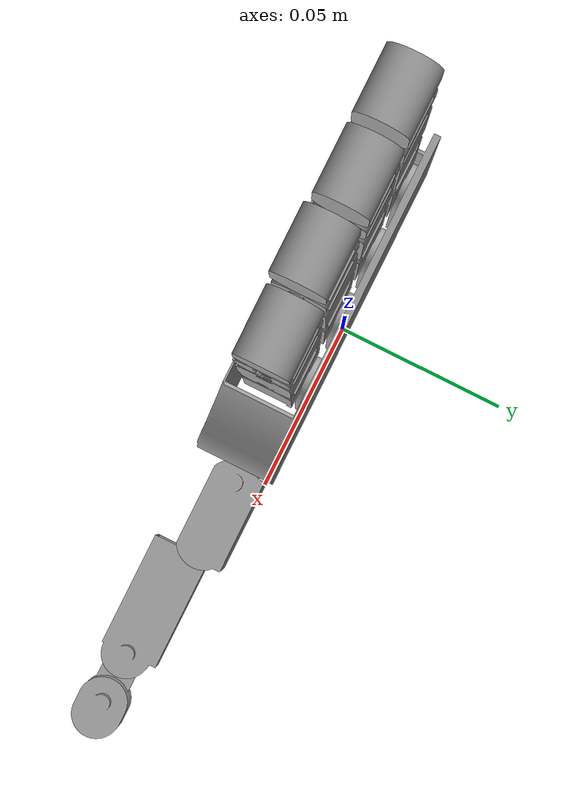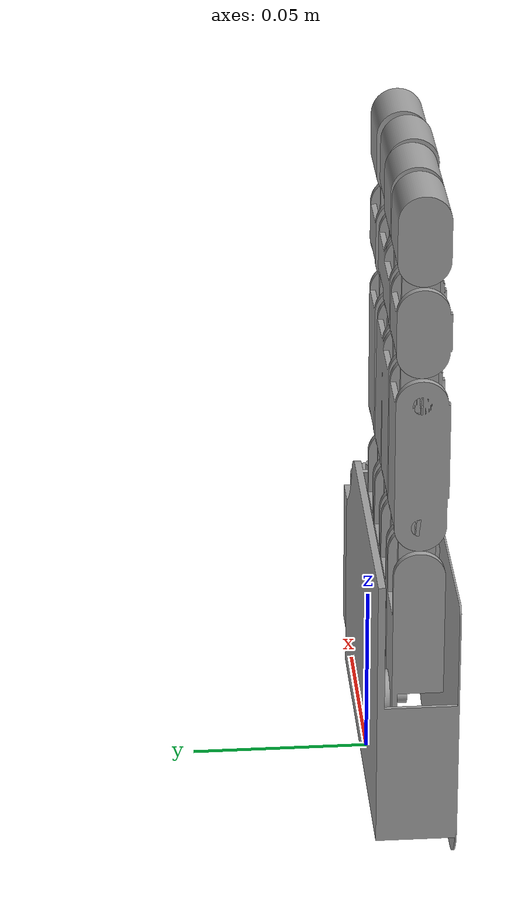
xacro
<?xml version="1.0" ?>
<robot name="hand_" xmlns:xacro="http://www.ros.org/wiki/xacro">

<xacro:include filename="$(find hand__description)/urdf/materials.xacro" />
<xacro:include filename="$(find hand__description)/urdf/hand_.trans" />
<xacro:include filename="$(find hand__description)/urdf/hand_.gazebo" />
<link name="base_link">
  <inertial>
    <origin xyz="-0.0031328273327830454 -0.0038074039304968844 0.037148638420330775" rpy="0 0 0"/>
    <mass value="0.1608603273719889"/>
    <inertia ixx="9.7e-05" iyy="0.000223" izz="0.00015" ixy="-1e-06" iyz="-4e-06" ixz="-2e-06"/>
  </inertial>
  <visual>
    <origin xyz="0 0 0" rpy="0 0 0"/>
    <geometry>
      <mesh filename="package://hand__description/meshes/base_link.stl" scale="0.001 0.001 0.001"/>
    </geometry>
    <material name="steel_satin"/>
  </visual>
  <collision>
    <origin xyz="0 0 0" rpy="0 0 0"/>
    <geometry>
      <mesh filename="package://hand__description/meshes/base_link.stl" scale="0.001 0.001 0.001"/>
    </geometry>
  </collision>
</link>

<link name="cmc_link_v4_1">
  <inertial>
    <origin xyz="-0.00048645427795625945 -0.004769447524329848 -6.493517695722872e-06" rpy="0 0 0"/>
    <mass value="0.018416700517789007"/>
    <inertia ixx="5e-06" iyy="5e-06" izz="0.0" ixy="-0.0" iyz="-0.0" ixz="0.0"/>
  </inertial>
  <visual>
    <origin xyz="-0.039 0.0 -0.0225" rpy="0 0 0"/>
    <geometry>
      <mesh filename="package://hand__description/meshes/cmc_link_v4_1.stl" scale="0.001 0.001 0.001"/>
    </geometry>
    <material name="steel_satin"/>
  </visual>
  <collision>
    <origin xyz="-0.039 0.0 -0.0225" rpy="0 0 0"/>
    <geometry>
      <mesh filename="package://hand__description/meshes/cmc_link_v4_1.stl" scale="0.001 0.001 0.001"/>
    </geometry>
  </collision>
</link>

<link name="t_connector_1_v1_1">
  <inertial>
    <origin xyz="0.007499999970143861 -1.312864400526692e-11 -0.0012499999999999768" rpy="0 0 0"/>
    <mass value="0.00374307805216622"/>
    <inertia ixx="0.0" iyy="0.0" izz="0.0" ixy="-0.0" iyz="-0.0" ixz="-0.0"/>
  </inertial>
  <visual>
    <origin xyz="-0.03825 0.007 -0.0225" rpy="0 0 0"/>
    <geometry>
      <mesh filename="package://hand__description/meshes/t_connector_1_v1_1.stl" scale="0.001 0.001 0.001"/>
    </geometry>
    <material name="steel_satin"/>
  </visual>
  <collision>
    <origin xyz="-0.03825 0.007 -0.0225" rpy="0 0 0"/>
    <geometry>
      <mesh filename="package://hand__description/meshes/t_connector_1_v1_1.stl" scale="0.001 0.001 0.001"/>
    </geometry>
  </collision>
</link>

<link name="t_mcp_v5_1">
  <inertial>
    <origin xyz="0.007807400362975329 0.002936289856962501 -0.00016613310844226098" rpy="0 0 0"/>
    <mass value="0.03943050014537037"/>
    <inertia ixx="1.1e-05" iyy="1.3e-05" izz="3e-06" ixy="-0.0" iyz="-0.0" ixz="0.0"/>
  </inertial>
  <visual>
    <origin xyz="-0.05325 0.007 -0.0225" rpy="0 0 0"/>
    <geometry>
      <mesh filename="package://hand__description/meshes/t_mcp_v5_1.stl" scale="0.001 0.001 0.001"/>
    </geometry>
    <material name="steel_satin"/>
  </visual>
  <collision>
    <origin xyz="-0.05325 0.007 -0.0225" rpy="0 0 0"/>
    <geometry>
      <mesh filename="package://hand__description/meshes/t_mcp_v5_1.stl" scale="0.001 0.001 0.001"/>
    </geometry>
  </collision>
</link>

<link name="t_pip_link_v5_1">
  <inertial>
    <origin xyz="0.02133528843428059 -0.0068141396469656645 4.4729187367864576e-11" rpy="0 0 0"/>
    <mass value="0.03411217481775113"/>
    <inertia ixx="2e-06" iyy="7e-06" izz="6e-06" ixy="1e-06" iyz="0.0" ixz="0.0"/>
  </inertial>
  <visual>
    <origin xyz="-0.072947 0.004197 -0.014" rpy="0 0 0"/>
    <geometry>
      <mesh filename="package://hand__description/meshes/t_pip_link_v5_1.stl" scale="0.001 0.001 0.001"/>
    </geometry>
    <material name="steel_satin"/>
  </visual>
  <collision>
    <origin xyz="-0.072947 0.004197 -0.014" rpy="0 0 0"/>
    <geometry>
      <mesh filename="package://hand__description/meshes/t_pip_link_v5_1.stl" scale="0.001 0.001 0.001"/>
    </geometry>
  </collision>
</link>

<link name="t_connector_2_v1_1">
  <inertial>
    <origin xyz="0.00749969926025644 3.0084577047270744e-07 -0.0002499999999999603" rpy="0 0 0"/>
    <mass value="0.00374307805216622"/>
    <inertia ixx="0.0" iyy="0.0" izz="0.0" ixy="0.0" iyz="-0.0" ixz="-0.0"/>
  </inertial>
  <visual>
    <origin xyz="-0.108947 0.013197 -0.014" rpy="0 0 0"/>
    <geometry>
      <mesh filename="package://hand__description/meshes/t_connector_2_v1_1.stl" scale="0.001 0.001 0.001"/>
    </geometry>
    <material name="steel_satin"/>
  </visual>
  <collision>
    <origin xyz="-0.108947 0.013197 -0.014" rpy="0 0 0"/>
    <geometry>
      <mesh filename="package://hand__description/meshes/t_connector_2_v1_1.stl" scale="0.001 0.001 0.001"/>
    </geometry>
  </collision>
</link>

<link name="t_tip_v2_1">
  <inertial>
    <origin xyz="0.001655463445188382 3.0084577048138106e-07 0.001500000000000036" rpy="0 0 0"/>
    <mass value="0.028623425337123778"/>
    <inertia ixx="1e-06" iyy="1e-06" izz="1e-06" ixy="0.0" iyz="0.0" ixz="-0.0"/>
  </inertial>
  <visual>
    <origin xyz="-0.123947 0.013197 -0.0125" rpy="0 0 0"/>
    <geometry>
      <mesh filename="package://hand__description/meshes/t_tip_v2_1.stl" scale="0.001 0.001 0.001"/>
    </geometry>
    <material name="steel_satin"/>
  </visual>
  <collision>
    <origin xyz="-0.123947 0.013197 -0.0125" rpy="0 0 0"/>
    <geometry>
      <mesh filename="package://hand__description/meshes/t_tip_v2_1.stl" scale="0.001 0.001 0.001"/>
    </geometry>
  </collision>
</link>

<link name="i_mcp_yaw_link_v1_1">
  <inertial>
    <origin xyz="-3.172462292866385e-14 -0.0012359787607253364 0.0005366094686043744" rpy="0 0 0"/>
    <mass value="0.011430485562037091"/>
    <inertia ixx="2e-06" iyy="3e-06" izz="0.0" ixy="-0.0" iyz="0.0" ixz="0.0"/>
  </inertial>
  <visual>
    <origin xyz="-0.0195 0.0 -0.0225" rpy="0 0 0"/>
    <geometry>
      <mesh filename="package://hand__description/meshes/i_mcp_yaw_link_v1_1.stl" scale="0.001 0.001 0.001"/>
    </geometry>
    <material name="steel_satin"/>
  </visual>
  <collision>
    <origin xyz="-0.0195 0.0 -0.0225" rpy="0 0 0"/>
    <geometry>
      <mesh filename="package://hand__description/meshes/i_mcp_yaw_link_v1_1.stl" scale="0.001 0.001 0.001"/>
    </geometry>
  </collision>
</link>

<link name="i_mcp_pitch_link_v1_1">
  <inertial>
    <origin xyz="-4.586608870482678e-15 -0.005952105069446156 0.02420829596799528" rpy="0 0 0"/>
    <mass value="0.026330610364773934"/>
    <inertia ixx="5e-06" iyy="6e-06" izz="2e-06" ixy="0.0" iyz="0.0" ixz="-0.0"/>
  </inertial>
  <visual>
    <origin xyz="-0.0195 0.002 -0.0405" rpy="0 0 0"/>
    <geometry>
      <mesh filename="package://hand__description/meshes/i_mcp_pitch_link_v1_1.stl" scale="0.001 0.001 0.001"/>
    </geometry>
    <material name="steel_satin"/>
  </visual>
  <collision>
    <origin xyz="-0.0195 0.002 -0.0405" rpy="0 0 0"/>
    <geometry>
      <mesh filename="package://hand__description/meshes/i_mcp_pitch_link_v1_1.stl" scale="0.001 0.001 0.001"/>
    </geometry>
  </collision>
</link>

<link name="i_connector_1_v1_1">
  <inertial>
    <origin xyz="0.0002500000000000002 -3.469446951953614e-17 0.007499999970251525" rpy="0 0 0"/>
    <mass value="0.00374307805216622"/>
    <inertia ixx="0.0" iyy="0.0" izz="0.0" ixy="0.0" iyz="0.0" ixz="0.0"/>
  </inertial>
  <visual>
    <origin xyz="-0.0195 0.00925 -0.0815" rpy="0 0 0"/>
    <geometry>
      <mesh filename="package://hand__description/meshes/i_connector_1_v1_1.stl" scale="0.001 0.001 0.001"/>
    </geometry>
    <material name="steel_satin"/>
  </visual>
  <collision>
    <origin xyz="-0.0195 0.00925 -0.0815" rpy="0 0 0"/>
    <geometry>
      <mesh filename="package://hand__description/meshes/i_connector_1_v1_1.stl" scale="0.001 0.001 0.001"/>
    </geometry>
  </collision>
</link>

<link name="i_pip_pitch_link_v4_1">
  <inertial>
    <origin xyz="0.0010000000000000044 -4.163336342344337e-17 0.0179999999696749" rpy="0 0 0"/>
    <mass value="0.005240569245269249"/>
    <inertia ixx="2e-06" iyy="2e-06" izz="0.0" ixy="-0.0" iyz="0.0" ixz="-0.0"/>
  </inertial>
  <visual>
    <origin xyz="-0.0185 0.00925 -0.0965" rpy="0 0 0"/>
    <geometry>
      <mesh filename="package://hand__description/meshes/i_pip_pitch_link_v4_1.stl" scale="0.001 0.001 0.001"/>
    </geometry>
    <material name="steel_satin"/>
  </visual>
  <collision>
    <origin xyz="-0.0185 0.00925 -0.0965" rpy="0 0 0"/>
    <geometry>
      <mesh filename="package://hand__description/meshes/i_pip_pitch_link_v4_1.stl" scale="0.001 0.001 0.001"/>
    </geometry>
  </collision>
</link>

<link name="i_connector_2_v1_1">
  <inertial>
    <origin xyz="0.0002500000000000002 -5.0306980803327406e-17 0.007499999970251553" rpy="0 0 0"/>
    <mass value="0.00374307805216622"/>
    <inertia ixx="0.0" iyy="0.0" izz="0.0" ixy="-0.0" iyz="0.0" ixz="0.0"/>
  </inertial>
  <visual>
    <origin xyz="-0.0195 0.00925 -0.1325" rpy="0 0 0"/>
    <geometry>
      <mesh filename="package://hand__description/meshes/i_connector_2_v1_1.stl" scale="0.001 0.001 0.001"/>
    </geometry>
    <material name="steel_satin"/>
  </visual>
  <collision>
    <origin xyz="-0.0195 0.00925 -0.1325" rpy="0 0 0"/>
    <geometry>
      <mesh filename="package://hand__description/meshes/i_connector_2_v1_1.stl" scale="0.001 0.001 0.001"/>
    </geometry>
  </collision>
</link>

<link name="i_dip_link_v2_1">
  <inertial>
    <origin xyz="0.0010000000000000078 -7.112366251504909e-17 0.005499999970720593" rpy="0 0 0"/>
    <mass value="0.005240569245269249"/>
    <inertia ixx="0.0" iyy="0.0" izz="0.0" ixy="0.0" iyz="-0.0" ixz="0.0"/>
  </inertial>
  <visual>
    <origin xyz="-0.0185 0.00925 -0.1475" rpy="0 0 0"/>
    <geometry>
      <mesh filename="package://hand__description/meshes/i_dip_link_v2_1.stl" scale="0.001 0.001 0.001"/>
    </geometry>
    <material name="steel_satin"/>
  </visual>
  <collision>
    <origin xyz="-0.0185 0.00925 -0.1475" rpy="0 0 0"/>
    <geometry>
      <mesh filename="package://hand__description/meshes/i_dip_link_v2_1.stl" scale="0.001 0.001 0.001"/>
    </geometry>
  </collision>
</link>

<link name="i_connector_3_v1_1">
  <inertial>
    <origin xyz="0.00025000000000001063 -7.632783294297951e-17 0.007499999970251553" rpy="0 0 0"/>
    <mass value="0.00374307805216622"/>
    <inertia ixx="0.0" iyy="0.0" izz="0.0" ixy="-0.0" iyz="0.0" ixz="0.0"/>
  </inertial>
  <visual>
    <origin xyz="-0.0195 0.00925 -0.1585" rpy="0 0 0"/>
    <geometry>
      <mesh filename="package://hand__description/meshes/i_connector_3_v1_1.stl" scale="0.001 0.001 0.001"/>
    </geometry>
    <material name="steel_satin"/>
  </visual>
  <collision>
    <origin xyz="-0.0195 0.00925 -0.1585" rpy="0 0 0"/>
    <geometry>
      <mesh filename="package://hand__description/meshes/i_connector_3_v1_1.stl" scale="0.001 0.001 0.001"/>
    </geometry>
  </collision>
</link>

<link name="i_tip_link_v2_1">
  <inertial>
    <origin xyz="-0.001499990773028318 -2.6801042457141877e-06 0.005499950625065281" rpy="0 0 0"/>
    <mass value="0.04109471063806864"/>
    <inertia ixx="2e-06" iyy="3e-06" izz="2e-06" ixy="0.0" iyz="-0.0" ixz="0.0"/>
  </inertial>
  <visual>
    <origin xyz="-0.021 0.00925 -0.1735" rpy="0 0 0"/>
    <geometry>
      <mesh filename="package://hand__description/meshes/i_tip_link_v2_1.stl" scale="0.001 0.001 0.001"/>
    </geometry>
    <material name="steel_satin"/>
  </visual>
  <collision>
    <origin xyz="-0.021 0.00925 -0.1735" rpy="0 0 0"/>
    <geometry>
      <mesh filename="package://hand__description/meshes/i_tip_link_v2_1.stl" scale="0.001 0.001 0.001"/>
    </geometry>
  </collision>
</link>

<link name="m_mcp_yaw_link_v1_1">
  <inertial>
    <origin xyz="1.7623359342441685e-14 -0.0012359787607253386 0.0005366094686043675" rpy="0 0 0"/>
    <mass value="0.011430485562037091"/>
    <inertia ixx="2e-06" iyy="3e-06" izz="0.0" ixy="0.0" iyz="0.0" ixz="-0.0"/>
  </inertial>
  <visual>
    <origin xyz="-0.0 0.0 -0.0225" rpy="0 0 0"/>
    <geometry>
      <mesh filename="package://hand__description/meshes/m_mcp_yaw_link_v1_1.stl" scale="0.001 0.001 0.001"/>
    </geometry>
    <material name="steel_satin"/>
  </visual>
  <collision>
    <origin xyz="-0.0 0.0 -0.0225" rpy="0 0 0"/>
    <geometry>
      <mesh filename="package://hand__description/meshes/m_mcp_yaw_link_v1_1.stl" scale="0.001 0.001 0.001"/>
    </geometry>
  </collision>
</link>

<link name="m_mcp_pitch_link_v1_1">
  <inertial>
    <origin xyz="-4.5964789723509935e-15 -0.005952105069446156 0.024208295967995265" rpy="0 0 0"/>
    <mass value="0.026330610364773934"/>
    <inertia ixx="5e-06" iyy="6e-06" izz="2e-06" ixy="0.0" iyz="0.0" ixz="-0.0"/>
  </inertial>
  <visual>
    <origin xyz="0.0 0.002 -0.0405" rpy="0 0 0"/>
    <geometry>
      <mesh filename="package://hand__description/meshes/m_mcp_pitch_link_v1_1.stl" scale="0.001 0.001 0.001"/>
    </geometry>
    <material name="steel_satin"/>
  </visual>
  <collision>
    <origin xyz="0.0 0.002 -0.0405" rpy="0 0 0"/>
    <geometry>
      <mesh filename="package://hand__description/meshes/m_mcp_pitch_link_v1_1.stl" scale="0.001 0.001 0.001"/>
    </geometry>
  </collision>
</link>

<link name="m_connector_1_v1_1">
  <inertial>
    <origin xyz="0.00024999999999998857 -1.0581813203458523e-16 0.007499999970251525" rpy="0 0 0"/>
    <mass value="0.00374307805216622"/>
    <inertia ixx="0.0" iyy="0.0" izz="0.0" ixy="-0.0" iyz="0.0" ixz="-0.0"/>
  </inertial>
  <visual>
    <origin xyz="0.0 0.00925 -0.0815" rpy="0 0 0"/>
    <geometry>
      <mesh filename="package://hand__description/meshes/m_connector_1_v1_1.stl" scale="0.001 0.001 0.001"/>
    </geometry>
    <material name="steel_satin"/>
  </visual>
  <collision>
    <origin xyz="0.0 0.00925 -0.0815" rpy="0 0 0"/>
    <geometry>
      <mesh filename="package://hand__description/meshes/m_connector_1_v1_1.stl" scale="0.001 0.001 0.001"/>
    </geometry>
  </collision>
</link>

<link name="m_pip_pitch_link_v2_1">
  <inertial>
    <origin xyz="-0.010824012750029453 0.0007615456375304318 0.018123960084147656" rpy="0 0 0"/>
    <mass value="0.11604898173137333"/>
    <inertia ixx="2.2e-05" iyy="7.8e-05" izz="6.1e-05" ixy="0.0" iyz="0.0" ixz="0.0"/>
  </inertial>
  <visual>
    <origin xyz="-0.0015 0.00925 -0.0965" rpy="0 0 0"/>
    <geometry>
      <mesh filename="package://hand__description/meshes/m_pip_pitch_link_v2_1.stl" scale="0.001 0.001 0.001"/>
    </geometry>
    <material name="steel_satin"/>
  </visual>
  <collision>
    <origin xyz="-0.0015 0.00925 -0.0965" rpy="0 0 0"/>
    <geometry>
      <mesh filename="package://hand__description/meshes/m_pip_pitch_link_v2_1.stl" scale="0.001 0.001 0.001"/>
    </geometry>
  </collision>
</link>

<link name="m_connector_2_v1_1">
  <inertial>
    <origin xyz="0.00025000000000000857 -6.560429417987179e-05 0.007499343623543014" rpy="0 0 0"/>
    <mass value="0.00374307805216622"/>
    <inertia ixx="0.0" iyy="0.0" izz="0.0" ixy="-0.0" iyz="0.0" ixz="0.0"/>
  </inertial>
  <visual>
    <origin xyz="-0.0 0.009564 -0.132499" rpy="0 0 0"/>
    <geometry>
      <mesh filename="package://hand__description/meshes/m_connector_2_v1_1.stl" scale="0.001 0.001 0.001"/>
    </geometry>
    <material name="steel_satin"/>
  </visual>
  <collision>
    <origin xyz="-0.0 0.009564 -0.132499" rpy="0 0 0"/>
    <geometry>
      <mesh filename="package://hand__description/meshes/m_connector_2_v1_1.stl" scale="0.001 0.001 0.001"/>
    </geometry>
  </collision>
</link>

<link name="m_dip_link_v2_1">
  <inertial>
    <origin xyz="-0.0014999999999999911 -4.804925566282911e-05 0.005499848623846337" rpy="0 0 0"/>
    <mass value="0.005240569245269249"/>
    <inertia ixx="0.0" iyy="0.0" izz="0.0" ixy="0.0" iyz="0.0" ixz="-0.0"/>
  </inertial>
  <visual>
    <origin xyz="-0.0015 0.009695 -0.147498" rpy="0 0 0"/>
    <geometry>
      <mesh filename="package://hand__description/meshes/m_dip_link_v2_1.stl" scale="0.001 0.001 0.001"/>
    </geometry>
    <material name="steel_satin"/>
  </visual>
  <collision>
    <origin xyz="-0.0015 0.009695 -0.147498" rpy="0 0 0"/>
    <geometry>
      <mesh filename="package://hand__description/meshes/m_dip_link_v2_1.stl" scale="0.001 0.001 0.001"/>
    </geometry>
  </collision>
</link>

<link name="m_connector_3_v1_1">
  <inertial>
    <origin xyz="0.0002499999999999933 -6.549421713753119e-05 0.00749935362321158" rpy="0 0 0"/>
    <mass value="0.00374307805216622"/>
    <inertia ixx="0.0" iyy="0.0" izz="0.0" ixy="0.0" iyz="0.0" ixz="-0.0"/>
  </inertial>
  <visual>
    <origin xyz="-0.0 0.009791 -0.158498" rpy="0 0 0"/>
    <geometry>
      <mesh filename="package://hand__description/meshes/m_connector_3_v1_1.stl" scale="0.001 0.001 0.001"/>
    </geometry>
    <material name="steel_satin"/>
  </visual>
  <collision>
    <origin xyz="-0.0 0.009791 -0.158498" rpy="0 0 0"/>
    <geometry>
      <mesh filename="package://hand__description/meshes/m_connector_3_v1_1.stl" scale="0.001 0.001 0.001"/>
    </geometry>
  </collision>
</link>

<link name="m_tip_link_v2_1">
  <inertial>
    <origin xyz="-0.001499990773028336 -5.0618750199347626e-05 0.005499785891713599" rpy="0 0 0"/>
    <mass value="0.04109471063806864"/>
    <inertia ixx="2e-06" iyy="3e-06" izz="2e-06" ixy="0.0" iyz="0.0" ixz="0.0"/>
  </inertial>
  <visual>
    <origin xyz="-0.0015 0.009922 -0.173497" rpy="0 0 0"/>
    <geometry>
      <mesh filename="package://hand__description/meshes/m_tip_link_v2_1.stl" scale="0.001 0.001 0.001"/>
    </geometry>
    <material name="steel_satin"/>
  </visual>
  <collision>
    <origin xyz="-0.0015 0.009922 -0.173497" rpy="0 0 0"/>
    <geometry>
      <mesh filename="package://hand__description/meshes/m_tip_link_v2_1.stl" scale="0.001 0.001 0.001"/>
    </geometry>
  </collision>
</link>

<link name="r_mcp_yaw_link_v1_1">
  <inertial>
    <origin xyz="-3.17280923756158e-14 -0.0012359787607253358 0.0005366094686043987" rpy="0 0 0"/>
    <mass value="0.011430485562037091"/>
    <inertia ixx="2e-06" iyy="3e-06" izz="0.0" ixy="-0.0" iyz="0.0" ixz="0.0"/>
  </inertial>
  <visual>
    <origin xyz="0.0195 0.0 -0.0225" rpy="0 0 0"/>
    <geometry>
      <mesh filename="package://hand__description/meshes/r_mcp_yaw_link_v1_1.stl" scale="0.001 0.001 0.001"/>
    </geometry>
    <material name="steel_satin"/>
  </visual>
  <collision>
    <origin xyz="0.0195 0.0 -0.0225" rpy="0 0 0"/>
    <geometry>
      <mesh filename="package://hand__description/meshes/r_mcp_yaw_link_v1_1.stl" scale="0.001 0.001 0.001"/>
    </geometry>
  </collision>
</link>

<link name="r_mcp_pitch_link_v1_1">
  <inertial>
    <origin xyz="-4.593547764386585e-15 -0.005952105069446156 0.024208295967995307" rpy="0 0 0"/>
    <mass value="0.026330610364773934"/>
    <inertia ixx="5e-06" iyy="6e-06" izz="2e-06" ixy="0.0" iyz="0.0" ixz="-0.0"/>
  </inertial>
  <visual>
    <origin xyz="0.0195 0.002 -0.0405" rpy="0 0 0"/>
    <geometry>
      <mesh filename="package://hand__description/meshes/r_mcp_pitch_link_v1_1.stl" scale="0.001 0.001 0.001"/>
    </geometry>
    <material name="steel_satin"/>
  </visual>
  <collision>
    <origin xyz="0.0195 0.002 -0.0405" rpy="0 0 0"/>
    <geometry>
      <mesh filename="package://hand__description/meshes/r_mcp_pitch_link_v1_1.stl" scale="0.001 0.001 0.001"/>
    </geometry>
  </collision>
</link>

<link name="r_connector_1_v1_1">
  <inertial>
    <origin xyz="0.00024999999999999675 -2.6020852139652106e-17 0.007499999970251553" rpy="0 0 0"/>
    <mass value="0.00374307805216622"/>
    <inertia ixx="0.0" iyy="0.0" izz="0.0" ixy="-0.0" iyz="0.0" ixz="-0.0"/>
  </inertial>
  <visual>
    <origin xyz="0.0195 0.00925 -0.0815" rpy="0 0 0"/>
    <geometry>
      <mesh filename="package://hand__description/meshes/r_connector_1_v1_1.stl" scale="0.001 0.001 0.001"/>
    </geometry>
    <material name="steel_satin"/>
  </visual>
  <collision>
    <origin xyz="0.0195 0.00925 -0.0815" rpy="0 0 0"/>
    <geometry>
      <mesh filename="package://hand__description/meshes/r_connector_1_v1_1.stl" scale="0.001 0.001 0.001"/>
    </geometry>
  </collision>
</link>

<link name="r_pip_pitch_link_v2_1">
  <inertial>
    <origin xyz="-0.001500000000000029 -3.469446951953614e-17 0.01799999997072063" rpy="0 0 0"/>
    <mass value="0.005240569245269249"/>
    <inertia ixx="2e-06" iyy="2e-06" izz="0.0" ixy="0.0" iyz="0.0" ixz="-0.0"/>
  </inertial>
  <visual>
    <origin xyz="0.018 0.00925 -0.0965" rpy="0 0 0"/>
    <geometry>
      <mesh filename="package://hand__description/meshes/r_pip_pitch_link_v2_1.stl" scale="0.001 0.001 0.001"/>
    </geometry>
    <material name="steel_satin"/>
  </visual>
  <collision>
    <origin xyz="0.018 0.00925 -0.0965" rpy="0 0 0"/>
    <geometry>
      <mesh filename="package://hand__description/meshes/r_pip_pitch_link_v2_1.stl" scale="0.001 0.001 0.001"/>
    </geometry>
  </collision>
</link>

<link name="r_connector_2_v1_1">
  <inertial>
    <origin xyz="0.0002499999999999343 -3.122502256758253e-17 0.0074999999702514974" rpy="0 0 0"/>
    <mass value="0.00374307805216622"/>
    <inertia ixx="0.0" iyy="0.0" izz="0.0" ixy="-0.0" iyz="0.0" ixz="0.0"/>
  </inertial>
  <visual>
    <origin xyz="0.0195 0.00925 -0.1325" rpy="0 0 0"/>
    <geometry>
      <mesh filename="package://hand__description/meshes/r_connector_2_v1_1.stl" scale="0.001 0.001 0.001"/>
    </geometry>
    <material name="steel_satin"/>
  </visual>
  <collision>
    <origin xyz="0.0195 0.00925 -0.1325" rpy="0 0 0"/>
    <geometry>
      <mesh filename="package://hand__description/meshes/r_connector_2_v1_1.stl" scale="0.001 0.001 0.001"/>
    </geometry>
  </collision>
</link>

<link name="r_dip_link_v2_1">
  <inertial>
    <origin xyz="0.0009999999999999176 -7.112366251504909e-17 0.005499999970720648" rpy="0 0 0"/>
    <mass value="0.005240569245269249"/>
    <inertia ixx="0.0" iyy="0.0" izz="0.0" ixy="0.0" iyz="0.0" ixz="0.0"/>
  </inertial>
  <visual>
    <origin xyz="0.0205 0.00925 -0.1475" rpy="0 0 0"/>
    <geometry>
      <mesh filename="package://hand__description/meshes/r_dip_link_v2_1.stl" scale="0.001 0.001 0.001"/>
    </geometry>
    <material name="steel_satin"/>
  </visual>
  <collision>
    <origin xyz="0.0205 0.00925 -0.1475" rpy="0 0 0"/>
    <geometry>
      <mesh filename="package://hand__description/meshes/r_dip_link_v2_1.stl" scale="0.001 0.001 0.001"/>
    </geometry>
  </collision>
</link>

<link name="r_connector_3_v1_1">
  <inertial>
    <origin xyz="0.00024999999999991 3.122502256758253e-17 0.0074999999702516085" rpy="0 0 0"/>
    <mass value="0.00374307805216622"/>
    <inertia ixx="0.0" iyy="0.0" izz="0.0" ixy="0.0" iyz="0.0" ixz="0.0"/>
  </inertial>
  <visual>
    <origin xyz="0.0195 0.00925 -0.1585" rpy="0 0 0"/>
    <geometry>
      <mesh filename="package://hand__description/meshes/r_connector_3_v1_1.stl" scale="0.001 0.001 0.001"/>
    </geometry>
    <material name="steel_satin"/>
  </visual>
  <collision>
    <origin xyz="0.0195 0.00925 -0.1585" rpy="0 0 0"/>
    <geometry>
      <mesh filename="package://hand__description/meshes/r_connector_3_v1_1.stl" scale="0.001 0.001 0.001"/>
    </geometry>
  </collision>
</link>

<link name="r_tip_link_v2_1">
  <inertial>
    <origin xyz="0.0010000092269715696 -2.68010424566735e-06 0.0054999506250653085" rpy="0 0 0"/>
    <mass value="0.04109471063806864"/>
    <inertia ixx="2e-06" iyy="3e-06" izz="2e-06" ixy="0.0" iyz="-0.0" ixz="0.0"/>
  </inertial>
  <visual>
    <origin xyz="0.0205 0.00925 -0.1735" rpy="0 0 0"/>
    <geometry>
      <mesh filename="package://hand__description/meshes/r_tip_link_v2_1.stl" scale="0.001 0.001 0.001"/>
    </geometry>
    <material name="steel_satin"/>
  </visual>
  <collision>
    <origin xyz="0.0205 0.00925 -0.1735" rpy="0 0 0"/>
    <geometry>
      <mesh filename="package://hand__description/meshes/r_tip_link_v2_1.stl" scale="0.001 0.001 0.001"/>
    </geometry>
  </collision>
</link>

<link name="s_mcp_yaw_link_v1_1">
  <inertial>
    <origin xyz="-3.1731561822567755e-14 -0.0012359787607253373 0.0005366094686043744" rpy="0 0 0"/>
    <mass value="0.011430485562037091"/>
    <inertia ixx="2e-06" iyy="3e-06" izz="0.0" ixy="-0.0" iyz="0.0" ixz="0.0"/>
  </inertial>
  <visual>
    <origin xyz="0.039 0.0 -0.0225" rpy="0 0 0"/>
    <geometry>
      <mesh filename="package://hand__description/meshes/s_mcp_yaw_link_v1_1.stl" scale="0.001 0.001 0.001"/>
    </geometry>
    <material name="steel_satin"/>
  </visual>
  <collision>
    <origin xyz="0.039 0.0 -0.0225" rpy="0 0 0"/>
    <geometry>
      <mesh filename="package://hand__description/meshes/s_mcp_yaw_link_v1_1.stl" scale="0.001 0.001 0.001"/>
    </geometry>
  </collision>
</link>

<link name="s_mcp_pitch_link_v1_1">
  <inertial>
    <origin xyz="-4.5727310826748635e-15 -0.005952105069446158 0.024208295967995265" rpy="0 0 0"/>
    <mass value="0.026330610364773934"/>
    <inertia ixx="5e-06" iyy="6e-06" izz="2e-06" ixy="0.0" iyz="0.0" ixz="-0.0"/>
  </inertial>
  <visual>
    <origin xyz="0.039 0.002 -0.0405" rpy="0 0 0"/>
    <geometry>
      <mesh filename="package://hand__description/meshes/s_mcp_pitch_link_v1_1.stl" scale="0.001 0.001 0.001"/>
    </geometry>
    <material name="steel_satin"/>
  </visual>
  <collision>
    <origin xyz="0.039 0.002 -0.0405" rpy="0 0 0"/>
    <geometry>
      <mesh filename="package://hand__description/meshes/s_mcp_pitch_link_v1_1.stl" scale="0.001 0.001 0.001"/>
    </geometry>
  </collision>
</link>

<link name="s_connector_1_v1_1">
  <inertial>
    <origin xyz="0.0002500000000000141 -3.9898639947466563e-17 0.007499999970143861" rpy="0 0 0"/>
    <mass value="0.00374307805216622"/>
    <inertia ixx="0.0" iyy="0.0" izz="0.0" ixy="0.0" iyz="-0.0" ixz="0.0"/>
  </inertial>
  <visual>
    <origin xyz="0.039 0.00925 -0.0815" rpy="0 0 0"/>
    <geometry>
      <mesh filename="package://hand__description/meshes/s_connector_1_v1_1.stl" scale="0.001 0.001 0.001"/>
    </geometry>
    <material name="steel_satin"/>
  </visual>
  <collision>
    <origin xyz="0.039 0.00925 -0.0815" rpy="0 0 0"/>
    <geometry>
      <mesh filename="package://hand__description/meshes/s_connector_1_v1_1.stl" scale="0.001 0.001 0.001"/>
    </geometry>
  </collision>
</link>

<link name="s_pip_pitch_link_v2_1">
  <inertial>
    <origin xyz="0.0010000000000000078 -5.204170427930421e-17 0.017999999969674843" rpy="0 0 0"/>
    <mass value="0.005240569245269249"/>
    <inertia ixx="2e-06" iyy="2e-06" izz="0.0" ixy="0.0" iyz="0.0" ixz="-0.0"/>
  </inertial>
  <visual>
    <origin xyz="0.04 0.00925 -0.0965" rpy="0 0 0"/>
    <geometry>
      <mesh filename="package://hand__description/meshes/s_pip_pitch_link_v2_1.stl" scale="0.001 0.001 0.001"/>
    </geometry>
    <material name="steel_satin"/>
  </visual>
  <collision>
    <origin xyz="0.04 0.00925 -0.0965" rpy="0 0 0"/>
    <geometry>
      <mesh filename="package://hand__description/meshes/s_pip_pitch_link_v2_1.stl" scale="0.001 0.001 0.001"/>
    </geometry>
  </collision>
</link>

<link name="s_connector_2_v1_1">
  <inertial>
    <origin xyz="0.00025000000000002104 -1.0408340855860843e-17 0.007499999970143834" rpy="0 0 0"/>
    <mass value="0.00374307805216622"/>
    <inertia ixx="0.0" iyy="0.0" izz="0.0" ixy="0.0" iyz="-0.0" ixz="0.0"/>
  </inertial>
  <visual>
    <origin xyz="0.039 0.00925 -0.1325" rpy="0 0 0"/>
    <geometry>
      <mesh filename="package://hand__description/meshes/s_connector_2_v1_1.stl" scale="0.001 0.001 0.001"/>
    </geometry>
    <material name="steel_satin"/>
  </visual>
  <collision>
    <origin xyz="0.039 0.00925 -0.1325" rpy="0 0 0"/>
    <geometry>
      <mesh filename="package://hand__description/meshes/s_connector_2_v1_1.stl" scale="0.001 0.001 0.001"/>
    </geometry>
  </collision>
</link>

<link name="s_dip_link_v2_1">
  <inertial>
    <origin xyz="0.02728839732396658 0.00047118040829075003 0.005456277585069891" rpy="0 0 0"/>
    <mass value="0.05228120754232652"/>
    <inertia ixx="3e-06" iyy="3.1e-05" izz="3e-05" ixy="-0.0" iyz="-0.0" ixz="0.0"/>
  </inertial>
  <visual>
    <origin xyz="0.04 0.00925 -0.1475" rpy="0 0 0"/>
    <geometry>
      <mesh filename="package://hand__description/meshes/s_dip_link_v2_1.stl" scale="0.001 0.001 0.001"/>
    </geometry>
    <material name="steel_satin"/>
  </visual>
  <collision>
    <origin xyz="0.04 0.00925 -0.1475" rpy="0 0 0"/>
    <geometry>
      <mesh filename="package://hand__description/meshes/s_dip_link_v2_1.stl" scale="0.001 0.001 0.001"/>
    </geometry>
  </collision>
</link>

<link name="s_connector_3_v1_1">
  <inertial>
    <origin xyz="0.00025000000000005573 -5.898059818321144e-17 0.007499999970251581" rpy="0 0 0"/>
    <mass value="0.00374307805216622"/>
    <inertia ixx="0.0" iyy="0.0" izz="0.0" ixy="-0.0" iyz="0.0" ixz="0.0"/>
  </inertial>
  <visual>
    <origin xyz="0.039 0.00925 -0.1585" rpy="0 0 0"/>
    <geometry>
      <mesh filename="package://hand__description/meshes/s_connector_3_v1_1.stl" scale="0.001 0.001 0.001"/>
    </geometry>
    <material name="steel_satin"/>
  </visual>
  <collision>
    <origin xyz="0.039 0.00925 -0.1585" rpy="0 0 0"/>
    <geometry>
      <mesh filename="package://hand__description/meshes/s_connector_3_v1_1.stl" scale="0.001 0.001 0.001"/>
    </geometry>
  </collision>
</link>

<link name="s_tip_link_v2_1">
  <inertial>
    <origin xyz="0.0010000092269717153 -2.680104245674289e-06 0.005499950625065364" rpy="0 0 0"/>
    <mass value="0.04109471063806864"/>
    <inertia ixx="2e-06" iyy="3e-06" izz="2e-06" ixy="0.0" iyz="-0.0" ixz="0.0"/>
  </inertial>
  <visual>
    <origin xyz="0.04 0.00925 -0.1735" rpy="0 0 0"/>
    <geometry>
      <mesh filename="package://hand__description/meshes/s_tip_link_v2_1.stl" scale="0.001 0.001 0.001"/>
    </geometry>
    <material name="steel_satin"/>
  </visual>
  <collision>
    <origin xyz="0.04 0.00925 -0.1735" rpy="0 0 0"/>
    <geometry>
      <mesh filename="package://hand__description/meshes/s_tip_link_v2_1.stl" scale="0.001 0.001 0.001"/>
    </geometry>
  </collision>
</link>

<joint name="Rigid1" type="fixed">
  <origin xyz="0.039 0.0 0.0225" rpy="0 0 0"/>
  <parent link="base_link"/>
  <child link="cmc_link_v4_1"/>
</joint>

<joint name="t_mcp_pitch" type="continuous">
  <origin xyz="-0.00075 -0.007 0.0" rpy="0 0 0"/>
  <parent link="cmc_link_v4_1"/>
  <child link="t_connector_1_v1_1"/>
  <axis xyz="0.0 0.0 -1.0"/>
</joint>

<joint name="Rigid3" type="fixed">
  <origin xyz="0.015 0.0 0.0" rpy="0 0 0"/>
  <parent link="t_connector_1_v1_1"/>
  <child link="t_mcp_v5_1"/>
</joint>

<joint name="t_mcp_yaw" type="continuous">
  <origin xyz="0.019697 0.002803 -0.0085" rpy="0 0 0"/>
  <parent link="t_mcp_v5_1"/>
  <child link="t_pip_link_v5_1"/>
  <axis xyz="0.0 -1.0 -0.0"/>
</joint>

<joint name="t_pip_pitch" type="continuous">
  <origin xyz="0.036 -0.009 0.0" rpy="0 0 0"/>
  <parent link="t_pip_link_v5_1"/>
  <child link="t_connector_2_v1_1"/>
  <axis xyz="-0.0 0.0 -1.0"/>
</joint>

<joint name="Rigid6" type="fixed">
  <origin xyz="0.015 0.0 -0.0015" rpy="0 0 0"/>
  <parent link="t_connector_2_v1_1"/>
  <child link="t_tip_v2_1"/>
</joint>

<joint name="Rigid7" type="fixed">
  <origin xyz="0.0195 0.0 0.0225" rpy="0 0 0"/>
  <parent link="base_link"/>
  <child link="i_mcp_yaw_link_v1_1"/>
</joint>

<joint name="i_mcp_yaw" type="continuous">
  <origin xyz="0.0 -0.002 0.018" rpy="0 0 0"/>
  <parent link="i_mcp_yaw_link_v1_1"/>
  <child link="i_mcp_pitch_link_v1_1"/>
  <axis xyz="0.0 -1.0 -0.0"/>
</joint>

<joint name="i_mcp_pitch" type="continuous">
  <origin xyz="0.0 -0.00725 0.041" rpy="0 0 0"/>
  <parent link="i_mcp_pitch_link_v1_1"/>
  <child link="i_connector_1_v1_1"/>
  <axis xyz="-1.0 0.0 0.0"/>
</joint>

<joint name="Rigid11" type="fixed">
  <origin xyz="-0.001 0.0 0.015" rpy="0 0 0"/>
  <parent link="i_connector_1_v1_1"/>
  <child link="i_pip_pitch_link_v4_1"/>
</joint>

<joint name="i_pip_pitch" type="continuous">
  <origin xyz="0.001 0.0 0.036" rpy="0 0 0"/>
  <parent link="i_pip_pitch_link_v4_1"/>
  <child link="i_connector_2_v1_1"/>
  <axis xyz="-1.0 0.0 0.0"/>
</joint>

<joint name="Rigid16" type="fixed">
  <origin xyz="-0.001 0.0 0.015" rpy="0 0 0"/>
  <parent link="i_connector_2_v1_1"/>
  <child link="i_dip_link_v2_1"/>
</joint>

<joint name="i_dip_pitch" type="continuous">
  <origin xyz="0.001 0.0 0.011" rpy="0 0 0"/>
  <parent link="i_dip_link_v2_1"/>
  <child link="i_connector_3_v1_1"/>
  <axis xyz="1.0 -0.0 -0.0"/>
</joint>

<joint name="Rigid18" type="fixed">
  <origin xyz="0.0015 0.0 0.015" rpy="0 0 0"/>
  <parent link="i_connector_3_v1_1"/>
  <child link="i_tip_link_v2_1"/>
</joint>

<joint name="Rigid19" type="fixed">
  <origin xyz="0.0 0.0 0.0225" rpy="0 0 0"/>
  <parent link="base_link"/>
  <child link="m_mcp_yaw_link_v1_1"/>
</joint>

<joint name="m_mcp_yaw" type="continuous">
  <origin xyz="-0.0 -0.002 0.018" rpy="0 0 0"/>
  <parent link="m_mcp_yaw_link_v1_1"/>
  <child link="m_mcp_pitch_link_v1_1"/>
  <axis xyz="0.0 -1.0 -0.0"/>
</joint>

<joint name="m_mcp_pitch" type="continuous">
  <origin xyz="0.0 -0.00725 0.041" rpy="0 0 0"/>
  <parent link="m_mcp_pitch_link_v1_1"/>
  <child link="m_connector_1_v1_1"/>
  <axis xyz="-1.0 -0.0 -0.0"/>
</joint>

<joint name="Rigid22" type="fixed">
  <origin xyz="0.0015 0.0 0.015" rpy="0 0 0"/>
  <parent link="m_connector_1_v1_1"/>
  <child link="m_pip_pitch_link_v2_1"/>
</joint>

<joint name="m_pip_pitch" type="continuous">
  <origin xyz="-0.0015 -0.000314 0.035999" rpy="0 0 0"/>
  <parent link="m_pip_pitch_link_v2_1"/>
  <child link="m_connector_2_v1_1"/>
  <axis xyz="-1.0 0.0 0.0"/>
</joint>

<joint name="Rigid24" type="fixed">
  <origin xyz="0.0015 -0.000131 0.014999" rpy="0 0 0"/>
  <parent link="m_connector_2_v1_1"/>
  <child link="m_dip_link_v2_1"/>
</joint>

<joint name="m_dip_pitch" type="continuous">
  <origin xyz="-0.0015 -9.6e-05 0.011" rpy="0 0 0"/>
  <parent link="m_dip_link_v2_1"/>
  <child link="m_connector_3_v1_1"/>
  <axis xyz="1.0 -0.0 -0.0"/>
</joint>

<joint name="Rigid26" type="fixed">
  <origin xyz="0.0015 -0.000131 0.014999" rpy="0 0 0"/>
  <parent link="m_connector_3_v1_1"/>
  <child link="m_tip_link_v2_1"/>
</joint>

<joint name="Rigid27" type="fixed">
  <origin xyz="-0.0195 0.0 0.0225" rpy="0 0 0"/>
  <parent link="base_link"/>
  <child link="r_mcp_yaw_link_v1_1"/>
</joint>

<joint name="r_mcp_yaw" type="continuous">
  <origin xyz="0.0 -0.002 0.018" rpy="0 0 0"/>
  <parent link="r_mcp_yaw_link_v1_1"/>
  <child link="r_mcp_pitch_link_v1_1"/>
  <axis xyz="0.0 -1.0 -0.0"/>
</joint>

<joint name="r_mcp_pitch" type="continuous">
  <origin xyz="0.0 -0.00725 0.041" rpy="0 0 0"/>
  <parent link="r_mcp_pitch_link_v1_1"/>
  <child link="r_connector_1_v1_1"/>
  <axis xyz="-1.0 0.0 0.0"/>
</joint>

<joint name="Rigid30" type="fixed">
  <origin xyz="0.0015 0.0 0.015" rpy="0 0 0"/>
  <parent link="r_connector_1_v1_1"/>
  <child link="r_pip_pitch_link_v2_1"/>
</joint>

<joint name="r_pip_pitch" type="continuous">
  <origin xyz="-0.0015 0.0 0.036" rpy="0 0 0"/>
  <parent link="r_pip_pitch_link_v2_1"/>
  <child link="r_connector_2_v1_1"/>
  <axis xyz="1.0 0.0 0.0"/>
</joint>

<joint name="Rigid32" type="fixed">
  <origin xyz="-0.001 0.0 0.015" rpy="0 0 0"/>
  <parent link="r_connector_2_v1_1"/>
  <child link="r_dip_link_v2_1"/>
</joint>

<joint name="r_dip_pitch" type="continuous">
  <origin xyz="0.001 0.0 0.011" rpy="0 0 0"/>
  <parent link="r_dip_link_v2_1"/>
  <child link="r_connector_3_v1_1"/>
  <axis xyz="1.0 0.0 0.0"/>
</joint>

<joint name="Rigid35" type="fixed">
  <origin xyz="-0.001 0.0 0.015" rpy="0 0 0"/>
  <parent link="r_connector_3_v1_1"/>
  <child link="r_tip_link_v2_1"/>
</joint>

<joint name="Rigid36" type="fixed">
  <origin xyz="-0.039 0.0 0.0225" rpy="0 0 0"/>
  <parent link="base_link"/>
  <child link="s_mcp_yaw_link_v1_1"/>
</joint>

<joint name="s_mcp_yaw" type="continuous">
  <origin xyz="0.0 -0.002 0.018" rpy="0 0 0"/>
  <parent link="s_mcp_yaw_link_v1_1"/>
  <child link="s_mcp_pitch_link_v1_1"/>
  <axis xyz="-0.0 -1.0 -0.0"/>
</joint>

<joint name="s_mcp_pitch" type="continuous">
  <origin xyz="0.0 -0.00725 0.041" rpy="0 0 0"/>
  <parent link="s_mcp_pitch_link_v1_1"/>
  <child link="s_connector_1_v1_1"/>
  <axis xyz="-1.0 0.0 0.0"/>
</joint>

<joint name="Rigid39" type="fixed">
  <origin xyz="-0.001 0.0 0.015" rpy="0 0 0"/>
  <parent link="s_connector_1_v1_1"/>
  <child link="s_pip_pitch_link_v2_1"/>
</joint>

<joint name="s_pip_pitch" type="continuous">
  <origin xyz="0.001 0.0 0.036" rpy="0 0 0"/>
  <parent link="s_pip_pitch_link_v2_1"/>
  <child link="s_connector_2_v1_1"/>
  <axis xyz="-1.0 -0.0 -0.0"/>
</joint>

<joint name="Rigid41" type="fixed">
  <origin xyz="-0.001 0.0 0.015" rpy="0 0 0"/>
  <parent link="s_connector_2_v1_1"/>
  <child link="s_dip_link_v2_1"/>
</joint>

<joint name="s_dip_pitch" type="continuous">
  <origin xyz="0.001 0.0 0.011" rpy="0 0 0"/>
  <parent link="s_dip_link_v2_1"/>
  <child link="s_connector_3_v1_1"/>
  <axis xyz="1.0 -0.0 -0.0"/>
</joint>

<joint name="Rigid43" type="fixed">
  <origin xyz="-0.001 0.0 0.015" rpy="0 0 0"/>
  <parent link="s_connector_3_v1_1"/>
  <child link="s_tip_link_v2_1"/>
</joint>

</robot>

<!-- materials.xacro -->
<robot name="hand_" xmlns:xacro="http://www.ros.org/wiki/xacro" >

<material name="silver_default">
  <color rgba="0.700 0.700 0.700 1.000"/>
</material>
<material name="steel_satin">
  <color rgba="0.6274509803921569 0.6274509803921569 0.6274509803921569 1.0"/>
</material>

</robot>

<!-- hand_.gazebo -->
<robot name="hand_" xmlns:xacro="http://www.ros.org/wiki/xacro" >

<xacro:property name="body_color" value="Gazebo/Silver" />

<gazebo>
  <plugin name="control" filename="libgazebo_ros_control.so"/>
</gazebo>
<gazebo reference="base_link">
  <material>${body_color}</material>
  <mu1>0.2</mu1>
  <mu2>0.2</mu2>
  <selfCollide>true</selfCollide>
  <gravity>true</gravity>
</gazebo>

<gazebo reference="cmc_link_v4_1">
  <material>${body_color}</material>
  <mu1>0.2</mu1>
  <mu2>0.2</mu2>
  <selfCollide>true</selfCollide>
</gazebo>

<gazebo reference="t_connector_1_v1_1">
  <material>${body_color}</material>
  <mu1>0.2</mu1>
  <mu2>0.2</mu2>
  <selfCollide>true</selfCollide>
</gazebo>

<gazebo reference="t_mcp_v5_1">
  <material>${body_color}</material>
  <mu1>0.2</mu1>
  <mu2>0.2</mu2>
  <selfCollide>true</selfCollide>
</gazebo>

<gazebo reference="t_pip_link_v5_1">
  <material>${body_color}</material>
  <mu1>0.2</mu1>
  <mu2>0.2</mu2>
  <selfCollide>true</selfCollide>
</gazebo>

<gazebo reference="t_connector_2_v1_1">
  <material>${body_color}</material>
  <mu1>0.2</mu1>
  <mu2>0.2</mu2>
  <selfCollide>true</selfCollide>
</gazebo>

<gazebo reference="t_tip_v2_1">
  <material>${body_color}</material>
  <mu1>0.2</mu1>
  <mu2>0.2</mu2>
  <selfCollide>true</selfCollide>
</gazebo>

<gazebo reference="i_mcp_yaw_link_v1_1">
  <material>${body_color}</material>
  <mu1>0.2</mu1>
  <mu2>0.2</mu2>
  <selfCollide>true</selfCollide>
</gazebo>

<gazebo reference="i_mcp_pitch_link_v1_1">
  <material>${body_color}</material>
  <mu1>0.2</mu1>
  <mu2>0.2</mu2>
  <selfCollide>true</selfCollide>
</gazebo>

<gazebo reference="i_connector_1_v1_1">
  <material>${body_color}</material>
  <mu1>0.2</mu1>
  <mu2>0.2</mu2>
  <selfCollide>true</selfCollide>
</gazebo>

<gazebo reference="i_pip_pitch_link_v4_1">
  <material>${body_color}</material>
  <mu1>0.2</mu1>
  <mu2>0.2</mu2>
  <selfCollide>true</selfCollide>
</gazebo>

<gazebo reference="i_connector_2_v1_1">
  <material>${body_color}</material>
  <mu1>0.2</mu1>
  <mu2>0.2</mu2>
  <selfCollide>true</selfCollide>
</gazebo>

<gazebo reference="i_dip_link_v2_1">
  <material>${body_color}</material>
  <mu1>0.2</mu1>
  <mu2>0.2</mu2>
  <selfCollide>true</selfCollide>
</gazebo>

<gazebo reference="i_connector_3_v1_1">
  <material>${body_color}</material>
  <mu1>0.2</mu1>
  <mu2>0.2</mu2>
  <selfCollide>true</selfCollide>
</gazebo>

<gazebo reference="i_tip_link_v2_1">
  <material>${body_color}</material>
  <mu1>0.2</mu1>
  <mu2>0.2</mu2>
  <selfCollide>true</selfCollide>
</gazebo>

<gazebo reference="m_mcp_yaw_link_v1_1">
  <material>${body_color}</material>
  <mu1>0.2</mu1>
  <mu2>0.2</mu2>
  <selfCollide>true</selfCollide>
</gazebo>

<gazebo reference="m_mcp_pitch_link_v1_1">
  <material>${body_color}</material>
  <mu1>0.2</mu1>
  <mu2>0.2</mu2>
  <selfCollide>true</selfCollide>
</gazebo>

<gazebo reference="m_connector_1_v1_1">
  <material>${body_color}</material>
  <mu1>0.2</mu1>
  <mu2>0.2</mu2>
  <selfCollide>true</selfCollide>
</gazebo>

<gazebo reference="m_pip_pitch_link_v2_1">
  <material>${body_color}</material>
  <mu1>0.2</mu1>
  <mu2>0.2</mu2>
  <selfCollide>true</selfCollide>
</gazebo>

<gazebo reference="m_connector_2_v1_1">
  <material>${body_color}</material>
  <mu1>0.2</mu1>
  <mu2>0.2</mu2>
  <selfCollide>true</selfCollide>
</gazebo>

<gazebo reference="m_dip_link_v2_1">
  <material>${body_color}</material>
  <mu1>0.2</mu1>
  <mu2>0.2</mu2>
  <selfCollide>true</selfCollide>
</gazebo>

<gazebo reference="m_connector_3_v1_1">
  <material>${body_color}</material>
  <mu1>0.2</mu1>
  <mu2>0.2</mu2>
  <selfCollide>true</selfCollide>
</gazebo>

<gazebo reference="m_tip_link_v2_1">
  <material>${body_color}</material>
  <mu1>0.2</mu1>
  <mu2>0.2</mu2>
  <selfCollide>true</selfCollide>
</gazebo>

<gazebo reference="r_mcp_yaw_link_v1_1">
  <material>${body_color}</material>
  <mu1>0.2</mu1>
  <mu2>0.2</mu2>
  <selfCollide>true</selfCollide>
</gazebo>

<gazebo reference="r_mcp_pitch_link_v1_1">
  <material>${body_color}</material>
  <mu1>0.2</mu1>
  <mu2>0.2</mu2>
  <selfCollide>true</selfCollide>
</gazebo>

<gazebo reference="r_connector_1_v1_1">
  <material>${body_color}</material>
  <mu1>0.2</mu1>
  <mu2>0.2</mu2>
  <selfCollide>true</selfCollide>
</gazebo>

<gazebo reference="r_pip_pitch_link_v2_1">
  <material>${body_color}</material>
  <mu1>0.2</mu1>
  <mu2>0.2</mu2>
  <selfCollide>true</selfCollide>
</gazebo>

<gazebo reference="r_connector_2_v1_1">
  <material>${body_color}</material>
  <mu1>0.2</mu1>
  <mu2>0.2</mu2>
  <selfCollide>true</selfCollide>
</gazebo>

<gazebo reference="r_dip_link_v2_1">
  <material>${body_color}</material>
  <mu1>0.2</mu1>
  <mu2>0.2</mu2>
  <selfCollide>true</selfCollide>
</gazebo>

<gazebo reference="r_connector_3_v1_1">
  <material>${body_color}</material>
  <mu1>0.2</mu1>
  <mu2>0.2</mu2>
  <selfCollide>true</selfCollide>
</gazebo>

<gazebo reference="r_tip_link_v2_1">
  <material>${body_color}</material>
  <mu1>0.2</mu1>
  <mu2>0.2</mu2>
  <selfCollide>true</selfCollide>
</gazebo>

<gazebo reference="s_mcp_yaw_link_v1_1">
  <material>${body_color}</material>
  <mu1>0.2</mu1>
  <mu2>0.2</mu2>
  <selfCollide>true</selfCollide>
</gazebo>

<gazebo reference="s_mcp_pitch_link_v1_1">
  <material>${body_color}</material>
  <mu1>0.2</mu1>
  <mu2>0.2</mu2>
  <selfCollide>true</selfCollide>
</gazebo>

<gazebo reference="s_connector_1_v1_1">
  <material>${body_color}</material>
  <mu1>0.2</mu1>
  <mu2>0.2</mu2>
  <selfCollide>true</selfCollide>
</gazebo>

<gazebo reference="s_pip_pitch_link_v2_1">
  <material>${body_color}</material>
  <mu1>0.2</mu1>
  <mu2>0.2</mu2>
  <selfCollide>true</selfCollide>
</gazebo>

<gazebo reference="s_connector_2_v1_1">
  <material>${body_color}</material>
  <mu1>0.2</mu1>
  <mu2>0.2</mu2>
  <selfCollide>true</selfCollide>
</gazebo>

<gazebo reference="s_dip_link_v2_1">
  <material>${body_color}</material>
  <mu1>0.2</mu1>
  <mu2>0.2</mu2>
  <selfCollide>true</selfCollide>
</gazebo>

<gazebo reference="s_connector_3_v1_1">
  <material>${body_color}</material>
  <mu1>0.2</mu1>
  <mu2>0.2</mu2>
  <selfCollide>true</selfCollide>
</gazebo>

<gazebo reference="s_tip_link_v2_1">
  <material>${body_color}</material>
  <mu1>0.2</mu1>
  <mu2>0.2</mu2>
  <selfCollide>true</selfCollide>
</gazebo>

</robot>
